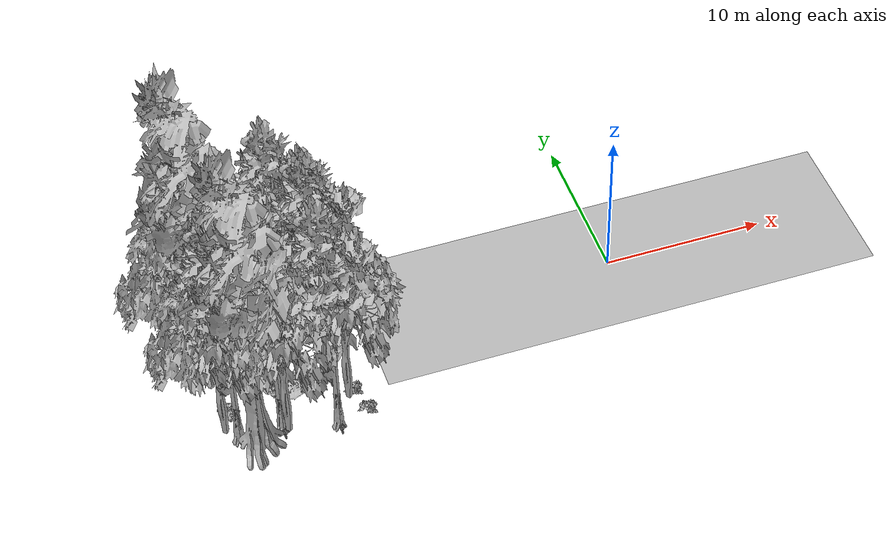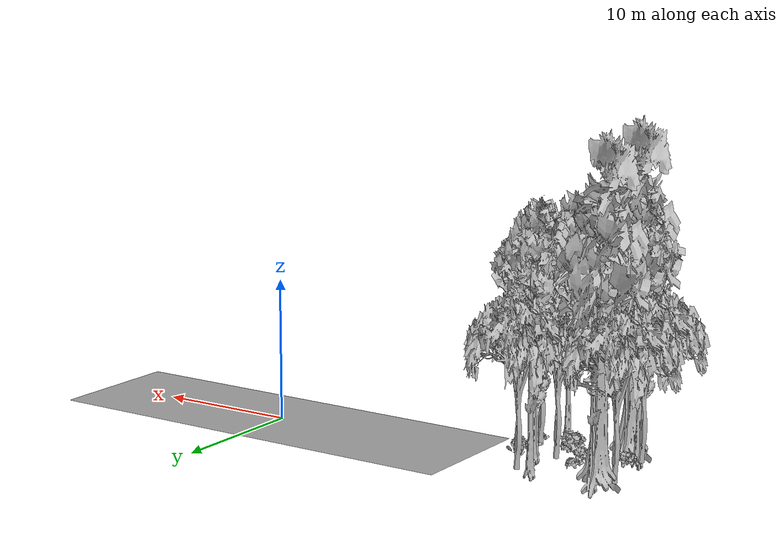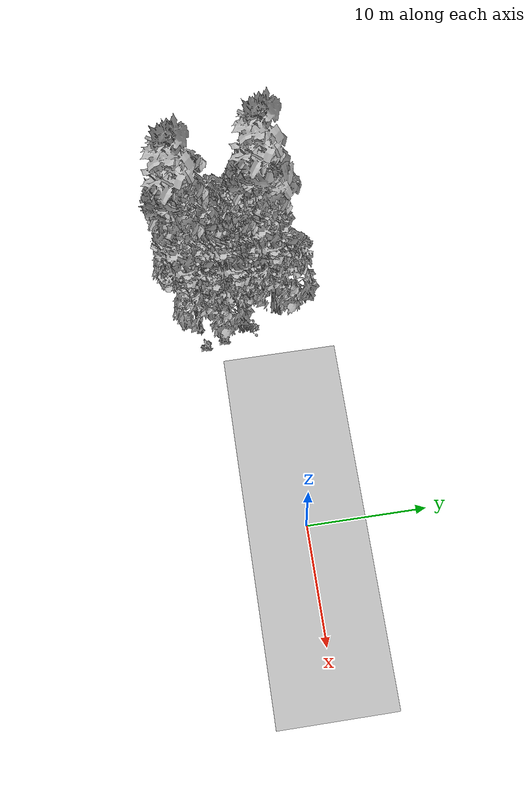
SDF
<sdf version="1.7">
 <world name="default">
  <model name="ground_plane">
   <static>1</static>
   <link name="link">
    <collision name="collision">
     <geometry><plane><normal>0 0 1</normal><size>100 100</size></plane></geometry>
     <surface><contact><ode><min_depth>0.01</min_depth><max_vel>0</max_vel></ode></contact></surface>
    </collision>
    <visual name="grass">
     <cast_shadows>0</cast_shadows>
     <geometry>
      <mesh>
       <scale>0.5814285714285714 0.18142857142857144 0.1</scale>
       <uri>file://grass_plane/meshes/grass_plane.dae</uri>
      </mesh>
     </geometry>
    </visual>
   </link>
  </model>
  <model name="Tree 32">
   <static>1</static>
   <pose>-18.20559136437409 -4.931028297914741 0 1.57079 -0 0</pose>
   <link name="link">
    <collision name="collision">
     <geometry><mesh><scale>3.5 5 3.5</scale><uri>model://tree_2/meshes/tree_2.obj</uri></mesh></geometry>
    </collision>
    <visual name="visual">
     <geometry><mesh><scale>3.5 5 3.5</scale><uri>model://tree_2/meshes/tree_2.obj</uri></mesh></geometry>
    </visual>
   </link>
  </model>
  <model name="Tree 61">
   <static>1</static>
   <pose>-22.434067620886317 -5.848073350876028 0 1.57079 -0 0</pose>
   <link name="link">
    <collision name="collision">
     <geometry><mesh><scale>3.5 5 3.5</scale><uri>model://tree_9/meshes/tree_9.obj</uri></mesh></geometry>
    </collision>
    <visual name="visual">
     <geometry><mesh><scale>3.5 5 3.5</scale><uri>model://tree_9/meshes/tree_9.obj</uri></mesh></geometry>
    </visual>
   </link>
  </model>
  <model name="Tree 62">
   <static>1</static>
   <pose>-18.783444623144984 -2.9105486305790293 0 1.57079 -0 0</pose>
   <link name="link">
    <collision name="collision">
     <geometry><mesh><scale>3.5 5 3.5</scale><uri>model://tree_9/meshes/tree_9.obj</uri></mesh></geometry>
    </collision>
    <visual name="visual">
     <geometry><mesh><scale>3.5 5 3.5</scale><uri>model://tree_9/meshes/tree_9.obj</uri></mesh></geometry>
    </visual>
   </link>
  </model>
  <model name="Tree 114">
   <static>1</static>
   <pose>-24.878811706972048 0.4190446116698361 0 1.57079 -0 0</pose>
   <link name="link">
    <collision name="collision">
     <geometry><mesh><scale>3.5 5 3.5</scale><uri>model://tree_9/meshes/tree_9.obj</uri></mesh></geometry>
    </collision>
    <visual name="visual">
     <geometry><mesh><scale>3.5 5 3.5</scale><uri>model://tree_9/meshes/tree_9.obj</uri></mesh></geometry>
    </visual>
   </link>
  </model>
  <model name="Tree 141">
   <static>1</static>
   <pose>-25.686869931656435 -5.150073037267147 0 1.57079 -0 0</pose>
   <link name="link">
    <collision name="collision">
     <geometry><mesh><scale>3.5 5 3.5</scale><uri>model://tree_2/meshes/tree_2.obj</uri></mesh></geometry>
    </collision>
    <visual name="visual">
     <geometry><mesh><scale>3.5 5 3.5</scale><uri>model://tree_2/meshes/tree_2.obj</uri></mesh></geometry>
    </visual>
   </link>
  </model>
  <model name="Tree 180">
   <static>1</static>
   <pose>-19.231274865622133 -6.582617953957072 0 1.57079 -0 0</pose>
   <link name="link">
    <collision name="collision">
     <geometry><mesh><scale>3.5 5 3.5</scale><uri>model://tree_9/meshes/tree_9.obj</uri></mesh></geometry>
    </collision>
    <visual name="visual">
     <geometry><mesh><scale>3.5 5 3.5</scale><uri>model://tree_9/meshes/tree_9.obj</uri></mesh></geometry>
    </visual>
   </link>
  </model>
  <model name="Tree 196">
   <static>1</static>
   <pose>-20.248776145862657 0.23377676202482256 0 1.57079 -0 0</pose>
   <link name="link">
    <collision name="collision">
     <geometry><mesh><scale>3.5 5 3.5</scale><uri>model://tree_9/meshes/tree_9.obj</uri></mesh></geometry>
    </collision>
    <visual name="visual">
     <geometry><mesh><scale>3.5 5 3.5</scale><uri>model://tree_9/meshes/tree_9.obj</uri></mesh></geometry>
    </visual>
   </link>
  </model>
  <model name="Tree 276">
   <static>1</static>
   <pose>-19.64092329569591 0.6418075413408673 0 1.57079 -0 0</pose>
   <link name="link">
    <collision name="collision">
     <geometry><mesh><scale>3.5 5 3.5</scale><uri>model://tree_2/meshes/tree_2.obj</uri></mesh></geometry>
    </collision>
    <visual name="visual">
     <geometry><mesh><scale>3.5 5 3.5</scale><uri>model://tree_2/meshes/tree_2.obj</uri></mesh></geometry>
    </visual>
   </link>
  </model>
  <model name="Tree 310">
   <static>1</static>
   <pose>-24.97447843496753 -5.757560807847517 0 1.57079 -0 0</pose>
   <link name="link">
    <collision name="collision">
     <geometry><mesh><scale>3.5 5 3.5</scale><uri>model://tree_9/meshes/tree_9.obj</uri></mesh></geometry>
    </collision>
    <visual name="visual">
     <geometry><mesh><scale>3.5 5 3.5</scale><uri>model://tree_9/meshes/tree_9.obj</uri></mesh></geometry>
    </visual>
   </link>
  </model>
  <model name="Tree 333">
   <static>1</static>
   <pose>-26.225009706741076 -0.3344092855029128 0 1.57079 -0 0</pose>
   <link name="link">
    <collision name="collision">
     <geometry><mesh><scale>3.5 5 3.5</scale><uri>model://tree_2/meshes/tree_2.obj</uri></mesh></geometry>
    </collision>
    <visual name="visual">
     <geometry><mesh><scale>3.5 5 3.5</scale><uri>model://tree_2/meshes/tree_2.obj</uri></mesh></geometry>
    </visual>
   </link>
  </model>
  <model name="Tree 377">
   <static>1</static>
   <pose>-24.015895788547393 -6.685262815839614 0 1.57079 -0 0</pose>
   <link name="link">
    <collision name="collision">
     <geometry><mesh><scale>3.5 5 3.5</scale><uri>model://tree_4/meshes/tree_4.obj</uri></mesh></geometry>
    </collision>
    <visual name="visual">
     <geometry><mesh><scale>3.5 5 3.5</scale><uri>model://tree_4/meshes/tree_4.obj</uri></mesh></geometry>
    </visual>
   </link>
  </model>
  <model name="Tree 427">
   <static>1</static>
   <pose>-20.607162289801142 -2.8240045310676827 0 1.57079 -0 0</pose>
   <link name="link">
    <collision name="collision">
     <geometry><mesh><scale>3.5 5 3.5</scale><uri>model://tree_2/meshes/tree_2.obj</uri></mesh></geometry>
    </collision>
    <visual name="visual">
     <geometry><mesh><scale>3.5 5 3.5</scale><uri>model://tree_2/meshes/tree_2.obj</uri></mesh></geometry>
    </visual>
   </link>
  </model>
  <model name="Tree 435">
   <static>1</static>
   <pose>-22.183812167273835 -6.1832077929852804 0 1.57079 -0 0</pose>
   <link name="link">
    <collision name="collision">
     <geometry><mesh><scale>3.5 5 3.5</scale><uri>model://tree_2/meshes/tree_2.obj</uri></mesh></geometry>
    </collision>
    <visual name="visual">
     <geometry><mesh><scale>3.5 5 3.5</scale><uri>model://tree_2/meshes/tree_2.obj</uri></mesh></geometry>
    </visual>
   </link>
  </model>
  <model name="Tree 440">
   <static>1</static>
   <pose>-18.864516896193162 -2.5441120175165057 0 1.57079 -0 0</pose>
   <link name="link">
    <collision name="collision">
     <geometry><mesh><scale>3.5 5 3.5</scale><uri>model://tree_9/meshes/tree_9.obj</uri></mesh></geometry>
    </collision>
    <visual name="visual">
     <geometry><mesh><scale>3.5 5 3.5</scale><uri>model://tree_9/meshes/tree_9.obj</uri></mesh></geometry>
    </visual>
   </link>
  </model>
  <model name="Tree 446">
   <static>1</static>
   <pose>-25.274669531345502 0.1775850712865399 0 1.57079 -0 0</pose>
   <link name="link">
    <collision name="collision">
     <geometry><mesh><scale>3.5 5 3.5</scale><uri>model://tree_4/meshes/tree_4.obj</uri></mesh></geometry>
    </collision>
    <visual name="visual">
     <geometry><mesh><scale>3.5 5 3.5</scale><uri>model://tree_4/meshes/tree_4.obj</uri></mesh></geometry>
    </visual>
   </link>
  </model>
  <model name="Bush 119">
   <static>1</static>
   <pose>-17.35215882943792 -6.193749719252663 0 1.57079 -0 0</pose>
   <link name="link">
    <collision name="collision">
     <geometry><mesh><scale>2 2 2</scale><uri>model://bush_2/meshes/bush_2.obj</uri></mesh></geometry>
     <surface><contact><collide_without_contact>false</collide_without_contact></contact></surface>
    </collision>
    <visual name="visual">
     <geometry><mesh><scale>2 2 2</scale><uri>model://bush_2/meshes/bush_2.obj</uri></mesh></geometry>
    </visual>
   </link>
  </model>
  <model name="Bush 134">
   <static>1</static>
   <pose>-17.73475627509364 -4.541197781756555 0 1.57079 -0 0</pose>
   <link name="link">
    <collision name="collision">
     <geometry><mesh><scale>2 2 2</scale><uri>model://bush_2/meshes/bush_2.obj</uri></mesh></geometry>
     <surface><contact><collide_without_contact>false</collide_without_contact></contact></surface>
    </collision>
    <visual name="visual">
     <geometry><mesh><scale>2 2 2</scale><uri>model://bush_2/meshes/bush_2.obj</uri></mesh></geometry>
    </visual>
   </link>
  </model>
  <model name="Bush 161">
   <static>1</static>
   <pose>-25.072412592752944 -4.078671796565484 0 1.57079 -0 0</pose>
   <link name="link">
    <collision name="collision">
     <geometry><mesh><scale>2 2 2</scale><uri>model://bush_3/meshes/bush_3.obj</uri></mesh></geometry>
     <surface><contact><collide_without_contact>false</collide_without_contact></contact></surface>
    </collision>
    <visual name="visual">
     <geometry><mesh><scale>2 2 2</scale><uri>model://bush_3/meshes/bush_3.obj</uri></mesh></geometry>
    </visual>
   </link>
  </model>
  <model name="Bush 232">
   <static>1</static>
   <pose>-22.207188975004385 -3.1899804031105568 0 1.57079 -0 0</pose>
   <link name="link">
    <collision name="collision">
     <geometry><mesh><scale>2 2 2</scale><uri>model://bush_3/meshes/bush_3.obj</uri></mesh></geometry>
     <surface><contact><collide_without_contact>false</collide_without_contact></contact></surface>
    </collision>
    <visual name="visual">
     <geometry><mesh><scale>2 2 2</scale><uri>model://bush_3/meshes/bush_3.obj</uri></mesh></geometry>
    </visual>
   </link>
  </model>
  <model name="Bush 276">
   <static>1</static>
   <pose>-18.155372690568477 -1.9847494124431204 0 1.57079 -0 0</pose>
   <link name="link">
    <collision name="collision">
     <geometry><mesh><scale>2 2 2</scale><uri>model://bush_4/meshes/bush_4.obj</uri></mesh></geometry>
     <surface><contact><collide_without_contact>false</collide_without_contact></contact></surface>
    </collision>
    <visual name="visual">
     <geometry><mesh><scale>2 2 2</scale><uri>model://bush_4/meshes/bush_4.obj</uri></mesh></geometry>
    </visual>
   </link>
  </model>
  <model name="Bush 314">
   <static>1</static>
   <pose>-22.122982476333394 -2.3307705716570286 0 1.57079 -0 0</pose>
   <link name="link">
    <collision name="collision">
     <geometry><mesh><scale>2 2 2</scale><uri>model://bush_2/meshes/bush_2.obj</uri></mesh></geometry>
     <surface><contact><collide_without_contact>false</collide_without_contact></contact></surface>
    </collision>
    <visual name="visual">
     <geometry><mesh><scale>2 2 2</scale><uri>model://bush_2/meshes/bush_2.obj</uri></mesh></geometry>
    </visual>
   </link>
  </model>
  <model name="Bush 330">
   <static>1</static>
   <pose>-21.202841049584112 -4.049784281831032 0 1.57079 -0 0</pose>
   <link name="link">
    <collision name="collision">
     <geometry><mesh><scale>2 2 2</scale><uri>model://bush_1/meshes/bush_1.obj</uri></mesh></geometry>
     <surface><contact><collide_without_contact>false</collide_without_contact></contact></surface>
    </collision>
    <visual name="visual">
     <geometry><mesh><scale>2 2 2</scale><uri>model://bush_1/meshes/bush_1.obj</uri></mesh></geometry>
    </visual>
   </link>
  </model>
 </world>
</sdf>
